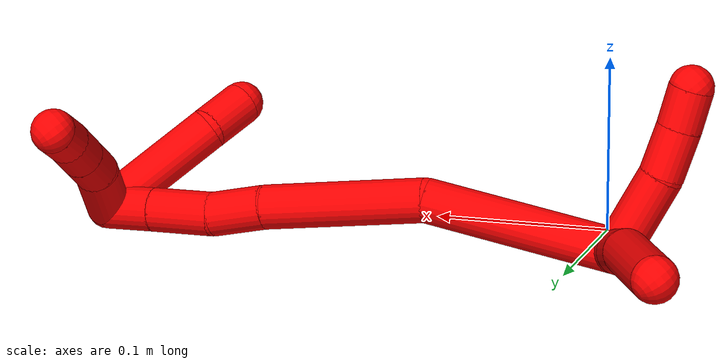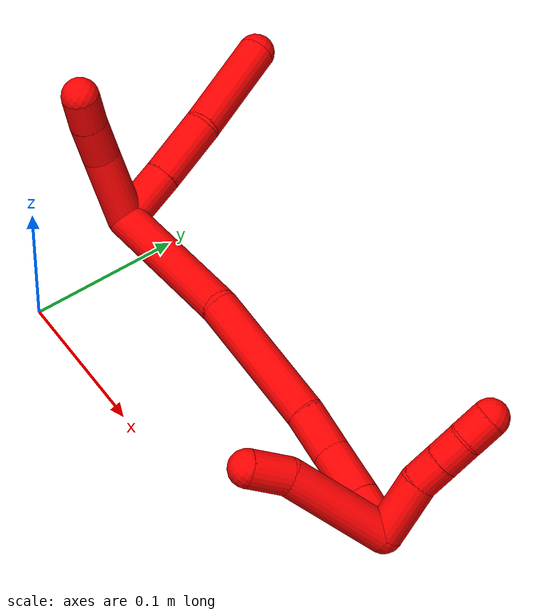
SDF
<sdf version="1.7">
 <world name="default">
  <model name="2">
   <static>0</static>
   <link name="2">
    <collision name="collision-cylinder-e_1_2_8">
     <pose>-0.017384 -0.005471 0.004367 0.897174 -1.188 -0.628578</pose>
     <geometry><cylinder><radius>0.0125</radius><length>0.037481</length></cylinder></geometry>
     <surface>
      <friction><ode><mu>1.16</mu><mu2>1.16</mu2><slip1>0</slip1><slip2>0</slip2></ode></friction>
      <contact><ode><kp>1e+06</kp><kd>1</kd><max_vel>0</max_vel><min_depth>0.001</min_depth></ode></contact>
     </surface>
    </collision>
    <visual name="visual-cylinder-e_1_2_8">
     <pose>-0.017384 -0.005471 0.004367 0.897174 -1.188 -0.628578</pose>
     <geometry><cylinder><radius>0.0125</radius><length>0.037481</length></cylinder></geometry>
     <material><ambient>1 0 0 1</ambient></material>
    </visual>
    <collision name="collision-cylinder-e_2_8_9">
     <pose>-0.05523 -0.017222 0.013259 0.946388 -1.20913 -0.679958</pose>
     <geometry><cylinder><radius>0.0125</radius><length>0.043753</length></cylinder></geometry>
     <surface>
      <friction><ode><mu>1.16</mu><mu2>1.16</mu2><slip1>0</slip1><slip2>0</slip2></ode></friction>
      <contact><ode><kp>1e+06</kp><kd>1</kd><max_vel>0</max_vel><min_depth>0.001</min_depth></ode></contact>
     </surface>
    </collision>
    <visual name="visual-cylinder-e_2_8_9">
     <pose>-0.05523 -0.017222 0.013259 0.946388 -1.20913 -0.679958</pose>
     <geometry><cylinder><radius>0.0125</radius><length>0.043753</length></cylinder></geometry>
     <material><ambient>1 0 0 1</ambient></material>
    </visual>
    <collision name="collision-cylinder-e_3_9_6">
     <pose>-0.109149 -0.025378 0.025481 0.239112 -1.33829 -0.189442</pose>
     <geometry><cylinder><radius>0.0125</radius><length>0.068766</length></cylinder></geometry>
     <surface>
      <friction><ode><mu>1.16</mu><mu2>1.16</mu2><slip1>0</slip1><slip2>0</slip2></ode></friction>
      <contact><ode><kp>1e+06</kp><kd>1</kd><max_vel>0</max_vel><min_depth>0.001</min_depth></ode></contact>
     </surface>
    </collision>
    <visual name="visual-cylinder-e_3_9_6">
     <pose>-0.109149 -0.025378 0.025481 0.239112 -1.33829 -0.189442</pose>
     <geometry><cylinder><radius>0.0125</radius><length>0.068766</length></cylinder></geometry>
     <material><ambient>1 0 0 1</ambient></material>
    </visual>
    <collision name="collision-cylinder-e_1_2_10">
     <pose>-0.009085 -0.012 -0.019514 2.59027 -0.377548 -1.18806</pose>
     <geometry><cylinder><radius>0.0125</radius><length>0.049288</length></cylinder></geometry>
     <surface>
      <friction><ode><mu>1.16</mu><mu2>1.16</mu2><slip1>0</slip1><slip2>0</slip2></ode></friction>
      <contact><ode><kp>1e+06</kp><kd>1</kd><max_vel>0</max_vel><min_depth>0.001</min_depth></ode></contact>
     </surface>
    </collision>
    <visual name="visual-cylinder-e_1_2_10">
     <pose>-0.009085 -0.012 -0.019514 2.59027 -0.377548 -1.18806</pose>
     <geometry><cylinder><radius>0.0125</radius><length>0.049288</length></cylinder></geometry>
     <material><ambient>1 0 0 1</ambient></material>
    </visual>
    <collision name="collision-cylinder-e_2_10_11">
     <pose>-0.021403 -0.032529 -0.049478 2.45707 -0.235298 -0.640637</pose>
     <geometry><cylinder><radius>0.0125</radius><length>0.027742</length></cylinder></geometry>
     <surface>
      <friction><ode><mu>1.16</mu><mu2>1.16</mu2><slip1>0</slip1><slip2>0</slip2></ode></friction>
      <contact><ode><kp>1e+06</kp><kd>1</kd><max_vel>0</max_vel><min_depth>0.001</min_depth></ode></contact>
     </surface>
    </collision>
    <visual name="visual-cylinder-e_2_10_11">
     <pose>-0.021403 -0.032529 -0.049478 2.45707 -0.235298 -0.640637</pose>
     <geometry><cylinder><radius>0.0125</radius><length>0.027742</length></cylinder></geometry>
     <material><ambient>1 0 0 1</ambient></material>
    </visual>
    <collision name="collision-cylinder-e_3_11_5">
     <pose>-0.027494 -0.048702 -0.068009 2.38392 -0.2514 -0.61478</pose>
     <geometry><cylinder><radius>0.0125</radius><length>0.02297</length></cylinder></geometry>
     <surface>
      <friction><ode><mu>1.16</mu><mu2>1.16</mu2><slip1>0</slip1><slip2>0</slip2></ode></friction>
      <contact><ode><kp>1e+06</kp><kd>1</kd><max_vel>0</max_vel><min_depth>0.001</min_depth></ode></contact>
     </surface>
    </collision>
    <visual name="visual-cylinder-e_3_11_5">
     <pose>-0.027494 -0.048702 -0.068009 2.38392 -0.2514 -0.61478</pose>
     <geometry><cylinder><radius>0.0125</radius><length>0.02297</length></cylinder></geometry>
     <material><ambient>1 0 0 1</ambient></material>
    </visual>
    <collision name="collision-cylinder-e_1_2_12">
     <pose>0.030026 -0.035435 0.028433 0.894595 0.584001 0.28643</pose>
     <geometry><cylinder><radius>0.0125</radius><length>0.108914</length></cylinder></geometry>
     <surface>
      <friction><ode><mu>1.16</mu><mu2>1.16</mu2><slip1>0</slip1><slip2>0</slip2></ode></friction>
      <contact><ode><kp>1e+06</kp><kd>1</kd><max_vel>0</max_vel><min_depth>0.001</min_depth></ode></contact>
     </surface>
    </collision>
    <visual name="visual-cylinder-e_1_2_12">
     <pose>0.030026 -0.035435 0.028433 0.894595 0.584001 0.28643</pose>
     <geometry><cylinder><radius>0.0125</radius><length>0.108914</length></cylinder></geometry>
     <material><ambient>1 0 0 1</ambient></material>
    </visual>
    <collision name="collision-cylinder-e_2_12_13">
     <pose>0.087901 -0.089684 0.089253 0.526272 0.639336 0.177872</pose>
     <geometry><cylinder><radius>0.0125</radius><length>0.093349</length></cylinder></geometry>
     <surface>
      <friction><ode><mu>1.16</mu><mu2>1.16</mu2><slip1>0</slip1><slip2>0</slip2></ode></friction>
      <contact><ode><kp>1e+06</kp><kd>1</kd><max_vel>0</max_vel><min_depth>0.001</min_depth></ode></contact>
     </surface>
    </collision>
    <visual name="visual-cylinder-e_2_12_13">
     <pose>0.087901 -0.089684 0.089253 0.526272 0.639336 0.177872</pose>
     <geometry><cylinder><radius>0.0125</radius><length>0.093349</length></cylinder></geometry>
     <material><ambient>1 0 0 1</ambient></material>
    </visual>
    <collision name="collision-cylinder-e_3_13_14">
     <pose>0.126005 -0.113207 0.132789 0.399619 0.703021 0.148266</pose>
     <geometry><cylinder><radius>0.0125</radius><length>0.031726</length></cylinder></geometry>
     <surface>
      <friction><ode><mu>1.16</mu><mu2>1.16</mu2><slip1>0</slip1><slip2>0</slip2></ode></friction>
      <contact><ode><kp>1e+06</kp><kd>1</kd><max_vel>0</max_vel><min_depth>0.001</min_depth></ode></contact>
     </surface>
    </collision>
    <visual name="visual-cylinder-e_3_13_14">
     <pose>0.126005 -0.113207 0.132789 0.399619 0.703021 0.148266</pose>
     <geometry><cylinder><radius>0.0125</radius><length>0.031726</length></cylinder></geometry>
     <material><ambient>1 0 0 1</ambient></material>
    </visual>
    <collision name="collision-cylinder-e_4_14_15">
     <pose>0.148629 -0.126115 0.154595 0.655797 0.743629 0.263767</pose>
     <geometry><cylinder><radius>0.0125</radius><length>0.036541</length></cylinder></geometry>
     <surface>
      <friction><ode><mu>1.16</mu><mu2>1.16</mu2><slip1>0</slip1><slip2>0</slip2></ode></friction>
      <contact><ode><kp>1e+06</kp><kd>1</kd><max_vel>0</max_vel><min_depth>0.001</min_depth></ode></contact>
     </surface>
    </collision>
    <visual name="visual-cylinder-e_4_14_15">
     <pose>0.148629 -0.126115 0.154595 0.655797 0.743629 0.263767</pose>
     <geometry><cylinder><radius>0.0125</radius><length>0.036541</length></cylinder></geometry>
     <material><ambient>1 0 0 1</ambient></material>
    </visual>
    <collision name="collision-cylinder-e_5_15_1">
     <pose>0.171228 -0.140652 0.173756 0.640418 0.767415 0.26618</pose>
     <geometry><cylinder><radius>0.0125</radius><length>0.02947</length></cylinder></geometry>
     <surface>
      <friction><ode><mu>1.16</mu><mu2>1.16</mu2><slip1>0</slip1><slip2>0</slip2></ode></friction>
      <contact><ode><kp>1e+06</kp><kd>1</kd><max_vel>0</max_vel><min_depth>0.001</min_depth></ode></contact>
     </surface>
    </collision>
    <visual name="visual-cylinder-e_5_15_1">
     <pose>0.171228 -0.140652 0.173756 0.640418 0.767415 0.26618</pose>
     <geometry><cylinder><radius>0.0125</radius><length>0.02947</length></cylinder></geometry>
     <material><ambient>1 0 0 1</ambient></material>
    </visual>
    <collision name="collision-cylinder-e_1_1_16">
     <pose>0.180293 -0.147729 0.146057 3.12116 -0.032171 -2.00993</pose>
     <geometry><cylinder><radius>0.0125</radius><length>0.072458</length></cylinder></geometry>
     <surface>
      <friction><ode><mu>1.16</mu><mu2>1.16</mu2><slip1>0</slip1><slip2>0</slip2></ode></friction>
      <contact><ode><kp>1e+06</kp><kd>1</kd><max_vel>0</max_vel><min_depth>0.001</min_depth></ode></contact>
     </surface>
    </collision>
    <visual name="visual-cylinder-e_1_1_16">
     <pose>0.180293 -0.147729 0.146057 3.12116 -0.032171 -2.00993</pose>
     <geometry><cylinder><radius>0.0125</radius><length>0.072458</length></cylinder></geometry>
     <material><ambient>1 0 0 1</ambient></material>
    </visual>
    <collision name="collision-cylinder-e_2_16_4">
     <pose>0.183092 -0.147542 0.096699 -3.07124 0.292039 -2.67182</pose>
     <geometry><cylinder><radius>0.0125</radius><length>0.027542</length></cylinder></geometry>
     <surface>
      <friction><ode><mu>1.16</mu><mu2>1.16</mu2><slip1>0</slip1><slip2>0</slip2></ode></friction>
      <contact><ode><kp>1e+06</kp><kd>1</kd><max_vel>0</max_vel><min_depth>0.001</min_depth></ode></contact>
     </surface>
    </collision>
    <visual name="visual-cylinder-e_2_16_4">
     <pose>0.183092 -0.147542 0.096699 -3.07124 0.292039 -2.67182</pose>
     <geometry><cylinder><radius>0.0125</radius><length>0.027542</length></cylinder></geometry>
     <material><ambient>1 0 0 1</ambient></material>
    </visual>
    <collision name="collision-cylinder-e_1_1_17">
     <pose>0.166959 -0.160681 0.181867 1.59946 -0.81382 -0.834864</pose>
     <geometry><cylinder><radius>0.0125</radius><length>0.039893</length></cylinder></geometry>
     <surface>
      <friction><ode><mu>1.16</mu><mu2>1.16</mu2><slip1>0</slip1><slip2>0</slip2></ode></friction>
      <contact><ode><kp>1e+06</kp><kd>1</kd><max_vel>0</max_vel><min_depth>0.001</min_depth></ode></contact>
     </surface>
    </collision>
    <visual name="visual-cylinder-e_1_1_17">
     <pose>0.166959 -0.160681 0.181867 1.59946 -0.81382 -0.834864</pose>
     <geometry><cylinder><radius>0.0125</radius><length>0.039893</length></cylinder></geometry>
     <material><ambient>1 0 0 1</ambient></material>
    </visual>
    <collision name="collision-cylinder-e_2_17_18">
     <pose>0.145974 -0.181733 0.183472 1.30581 -0.704763 -0.548312</pose>
     <geometry><cylinder><radius>0.0125</radius><length>0.020023</length></cylinder></geometry>
     <surface>
      <friction><ode><mu>1.16</mu><mu2>1.16</mu2><slip1>0</slip1><slip2>0</slip2></ode></friction>
      <contact><ode><kp>1e+06</kp><kd>1</kd><max_vel>0</max_vel><min_depth>0.001</min_depth></ode></contact>
     </surface>
    </collision>
    <visual name="visual-cylinder-e_2_17_18">
     <pose>0.145974 -0.181733 0.183472 1.30581 -0.704763 -0.548312</pose>
     <geometry><cylinder><radius>0.0125</radius><length>0.020023</length></cylinder></geometry>
     <material><ambient>1 0 0 1</ambient></material>
    </visual>
    <collision name="collision-cylinder-e_3_18_19">
     <pose>0.132931 -0.196405 0.18745 1.30617 -0.713513 -0.555558</pose>
     <geometry><cylinder><radius>0.0125</radius><length>0.020037</length></cylinder></geometry>
     <surface>
      <friction><ode><mu>1.16</mu><mu2>1.16</mu2><slip1>0</slip1><slip2>0</slip2></ode></friction>
      <contact><ode><kp>1e+06</kp><kd>1</kd><max_vel>0</max_vel><min_depth>0.001</min_depth></ode></contact>
     </surface>
    </collision>
    <visual name="visual-cylinder-e_3_18_19">
     <pose>0.132931 -0.196405 0.18745 1.30617 -0.713513 -0.555558</pose>
     <geometry><cylinder><radius>0.0125</radius><length>0.020037</length></cylinder></geometry>
     <material><ambient>1 0 0 1</ambient></material>
    </visual>
    <collision name="collision-cylinder-e_4_19_3">
     <pose>0.118975 -0.209933 0.192092 1.16652 -0.830273 -0.566038</pose>
     <geometry><cylinder><radius>0.0125</radius><length>0.020047</length></cylinder></geometry>
     <surface>
      <friction><ode><mu>1.16</mu><mu2>1.16</mu2><slip1>0</slip1><slip2>0</slip2></ode></friction>
      <contact><ode><kp>1e+06</kp><kd>1</kd><max_vel>0</max_vel><min_depth>0.001</min_depth></ode></contact>
     </surface>
    </collision>
    <visual name="visual-cylinder-e_4_19_3">
     <pose>0.118975 -0.209933 0.192092 1.16652 -0.830273 -0.566038</pose>
     <geometry><cylinder><radius>0.0125</radius><length>0.020047</length></cylinder></geometry>
     <material><ambient>1 0 0 1</ambient></material>
    </visual>
    <collision name="collision-sphere-3">
     <pose>0.111576 -0.216151 0.194752 0 -0 0</pose>
     <geometry><sphere><radius>0.0125</radius></sphere></geometry>
     <surface>
      <friction><ode><mu>1.16</mu><mu2>1.16</mu2><slip1>0</slip1><slip2>0</slip2></ode></friction>
      <contact><ode><kp>1e+06</kp><kd>1</kd><max_vel>0</max_vel><min_depth>0.001</min_depth></ode></contact>
     </surface>
    </collision>
    <visual name="visual-sphere-3">
     <pose>0.111576 -0.216151 0.194752 0 -0 0</pose>
     <geometry><sphere><radius>0.0125</radius></sphere></geometry>
     <material><ambient>1 0 0 1</ambient></material>
    </visual>
    <collision name="collision-sphere-19">
     <pose>0.126374 -0.203715 0.189431 0 -0 0</pose>
     <geometry><sphere><radius>0.0125</radius></sphere></geometry>
     <surface>
      <friction><ode><mu>1.16</mu><mu2>1.16</mu2><slip1>0</slip1><slip2>0</slip2></ode></friction>
      <contact><ode><kp>1e+06</kp><kd>1</kd><max_vel>0</max_vel><min_depth>0.001</min_depth></ode></contact>
     </surface>
    </collision>
    <visual name="visual-sphere-19">
     <pose>0.126374 -0.203715 0.189431 0 -0 0</pose>
     <geometry><sphere><radius>0.0125</radius></sphere></geometry>
     <material><ambient>1 0 0 1</ambient></material>
    </visual>
    <collision name="collision-sphere-11">
     <pose>-0.024637 -0.041058 -0.059928 0 -0 0</pose>
     <geometry><sphere><radius>0.0125</radius></sphere></geometry>
     <surface>
      <friction><ode><mu>1.16</mu><mu2>1.16</mu2><slip1>0</slip1><slip2>0</slip2></ode></friction>
      <contact><ode><kp>1e+06</kp><kd>1</kd><max_vel>0</max_vel><min_depth>0.001</min_depth></ode></contact>
     </surface>
    </collision>
    <visual name="visual-sphere-11">
     <pose>-0.024637 -0.041058 -0.059928 0 -0 0</pose>
     <geometry><sphere><radius>0.0125</radius></sphere></geometry>
     <material><ambient>1 0 0 1</ambient></material>
    </visual>
    <collision name="collision-sphere-10">
     <pose>-0.01817 -0.024 -0.039028 0 -0 0</pose>
     <geometry><sphere><radius>0.0125</radius></sphere></geometry>
     <surface>
      <friction><ode><mu>1.16</mu><mu2>1.16</mu2><slip1>0</slip1><slip2>0</slip2></ode></friction>
      <contact><ode><kp>1e+06</kp><kd>1</kd><max_vel>0</max_vel><min_depth>0.001</min_depth></ode></contact>
     </surface>
    </collision>
    <visual name="visual-sphere-10">
     <pose>-0.01817 -0.024 -0.039028 0 -0 0</pose>
     <geometry><sphere><radius>0.0125</radius></sphere></geometry>
     <material><ambient>1 0 0 1</ambient></material>
    </visual>
    <collision name="collision-sphere-6">
     <pose>-0.142606 -0.027255 0.033178 0 -0 0</pose>
     <geometry><sphere><radius>0.0125</radius></sphere></geometry>
     <surface>
      <friction><ode><mu>1.16</mu><mu2>1.16</mu2><slip1>0</slip1><slip2>0</slip2></ode></friction>
      <contact><ode><kp>1e+06</kp><kd>1</kd><max_vel>0</max_vel><min_depth>0.001</min_depth></ode></contact>
     </surface>
    </collision>
    <visual name="visual-sphere-6">
     <pose>-0.142606 -0.027255 0.033178 0 -0 0</pose>
     <geometry><sphere><radius>0.0125</radius></sphere></geometry>
     <material><ambient>1 0 0 1</ambient></material>
    </visual>
    <collision name="collision-sphere-9">
     <pose>-0.075691 -0.023502 0.017784 0 -0 0</pose>
     <geometry><sphere><radius>0.0125</radius></sphere></geometry>
     <surface>
      <friction><ode><mu>1.16</mu><mu2>1.16</mu2><slip1>0</slip1><slip2>0</slip2></ode></friction>
      <contact><ode><kp>1e+06</kp><kd>1</kd><max_vel>0</max_vel><min_depth>0.001</min_depth></ode></contact>
     </surface>
    </collision>
    <visual name="visual-sphere-9">
     <pose>-0.075691 -0.023502 0.017784 0 -0 0</pose>
     <geometry><sphere><radius>0.0125</radius></sphere></geometry>
     <material><ambient>1 0 0 1</ambient></material>
    </visual>
    <collision name="collision-sphere-2">
     <geometry><sphere><radius>0.0125</radius></sphere></geometry>
     <surface>
      <friction><ode><mu>1.16</mu><mu2>1.16</mu2><slip1>0</slip1><slip2>0</slip2></ode></friction>
      <contact><ode><kp>1e+06</kp><kd>1</kd><max_vel>0</max_vel><min_depth>0.001</min_depth></ode></contact>
     </surface>
    </collision>
    <visual name="visual-sphere-2">
     <geometry><sphere><radius>0.0125</radius></sphere></geometry>
     <material><ambient>1 0 0 1</ambient></material>
    </visual>
    <collision name="collision-sphere-8">
     <pose>-0.034769 -0.010942 0.008733 0 -0 0</pose>
     <geometry><sphere><radius>0.0125</radius></sphere></geometry>
     <surface>
      <friction><ode><mu>1.16</mu><mu2>1.16</mu2><slip1>0</slip1><slip2>0</slip2></ode></friction>
      <contact><ode><kp>1e+06</kp><kd>1</kd><max_vel>0</max_vel><min_depth>0.001</min_depth></ode></contact>
     </surface>
    </collision>
    <visual name="visual-sphere-8">
     <pose>-0.034769 -0.010942 0.008733 0 -0 0</pose>
     <geometry><sphere><radius>0.0125</radius></sphere></geometry>
     <material><ambient>1 0 0 1</ambient></material>
    </visual>
    <collision name="collision-sphere-5">
     <pose>-0.030351 -0.056347 -0.07609 0 -0 0</pose>
     <geometry><sphere><radius>0.0125</radius></sphere></geometry>
     <surface>
      <friction><ode><mu>1.16</mu><mu2>1.16</mu2><slip1>0</slip1><slip2>0</slip2></ode></friction>
      <contact><ode><kp>1e+06</kp><kd>1</kd><max_vel>0</max_vel><min_depth>0.001</min_depth></ode></contact>
     </surface>
    </collision>
    <visual name="visual-sphere-5">
     <pose>-0.030351 -0.056347 -0.07609 0 -0 0</pose>
     <geometry><sphere><radius>0.0125</radius></sphere></geometry>
     <material><ambient>1 0 0 1</ambient></material>
    </visual>
    <collision name="collision-sphere-12">
     <pose>0.060052 -0.070869 0.056865 0 -0 0</pose>
     <geometry><sphere><radius>0.0125</radius></sphere></geometry>
     <surface>
      <friction><ode><mu>1.16</mu><mu2>1.16</mu2><slip1>0</slip1><slip2>0</slip2></ode></friction>
      <contact><ode><kp>1e+06</kp><kd>1</kd><max_vel>0</max_vel><min_depth>0.001</min_depth></ode></contact>
     </surface>
    </collision>
    <visual name="visual-sphere-12">
     <pose>0.060052 -0.070869 0.056865 0 -0 0</pose>
     <geometry><sphere><radius>0.0125</radius></sphere></geometry>
     <material><ambient>1 0 0 1</ambient></material>
    </visual>
    <collision name="collision-sphere-13">
     <pose>0.11575 -0.108499 0.121641 0 -0 0</pose>
     <geometry><sphere><radius>0.0125</radius></sphere></geometry>
     <surface>
      <friction><ode><mu>1.16</mu><mu2>1.16</mu2><slip1>0</slip1><slip2>0</slip2></ode></friction>
      <contact><ode><kp>1e+06</kp><kd>1</kd><max_vel>0</max_vel><min_depth>0.001</min_depth></ode></contact>
     </surface>
    </collision>
    <visual name="visual-sphere-13">
     <pose>0.11575 -0.108499 0.121641 0 -0 0</pose>
     <geometry><sphere><radius>0.0125</radius></sphere></geometry>
     <material><ambient>1 0 0 1</ambient></material>
    </visual>
    <collision name="collision-sphere-14">
     <pose>0.136261 -0.117915 0.143937 0 -0 0</pose>
     <geometry><sphere><radius>0.0125</radius></sphere></geometry>
     <surface>
      <friction><ode><mu>1.16</mu><mu2>1.16</mu2><slip1>0</slip1><slip2>0</slip2></ode></friction>
      <contact><ode><kp>1e+06</kp><kd>1</kd><max_vel>0</max_vel><min_depth>0.001</min_depth></ode></contact>
     </surface>
    </collision>
    <visual name="visual-sphere-14">
     <pose>0.136261 -0.117915 0.143937 0 -0 0</pose>
     <geometry><sphere><radius>0.0125</radius></sphere></geometry>
     <material><ambient>1 0 0 1</ambient></material>
    </visual>
    <collision name="collision-sphere-15">
     <pose>0.160998 -0.134315 0.165252 0 -0 0</pose>
     <geometry><sphere><radius>0.0125</radius></sphere></geometry>
     <surface>
      <friction><ode><mu>1.16</mu><mu2>1.16</mu2><slip1>0</slip1><slip2>0</slip2></ode></friction>
      <contact><ode><kp>1e+06</kp><kd>1</kd><max_vel>0</max_vel><min_depth>0.001</min_depth></ode></contact>
     </surface>
    </collision>
    <visual name="visual-sphere-15">
     <pose>0.160998 -0.134315 0.165252 0 -0 0</pose>
     <geometry><sphere><radius>0.0125</radius></sphere></geometry>
     <material><ambient>1 0 0 1</ambient></material>
    </visual>
    <collision name="collision-sphere-1">
     <pose>0.181458 -0.146989 0.18226 0 -0 0</pose>
     <geometry><sphere><radius>0.0125</radius></sphere></geometry>
     <surface>
      <friction><ode><mu>1.16</mu><mu2>1.16</mu2><slip1>0</slip1><slip2>0</slip2></ode></friction>
      <contact><ode><kp>1e+06</kp><kd>1</kd><max_vel>0</max_vel><min_depth>0.001</min_depth></ode></contact>
     </surface>
    </collision>
    <visual name="visual-sphere-1">
     <pose>0.181458 -0.146989 0.18226 0 -0 0</pose>
     <geometry><sphere><radius>0.0125</radius></sphere></geometry>
     <material><ambient>1 0 0 1</ambient></material>
    </visual>
    <collision name="collision-sphere-18">
     <pose>0.139487 -0.189094 0.185469 0 -0 0</pose>
     <geometry><sphere><radius>0.0125</radius></sphere></geometry>
     <surface>
      <friction><ode><mu>1.16</mu><mu2>1.16</mu2><slip1>0</slip1><slip2>0</slip2></ode></friction>
      <contact><ode><kp>1e+06</kp><kd>1</kd><max_vel>0</max_vel><min_depth>0.001</min_depth></ode></contact>
     </surface>
    </collision>
    <visual name="visual-sphere-18">
     <pose>0.139487 -0.189094 0.185469 0 -0 0</pose>
     <geometry><sphere><radius>0.0125</radius></sphere></geometry>
     <material><ambient>1 0 0 1</ambient></material>
    </visual>
    <collision name="collision-sphere-16">
     <pose>0.179128 -0.148469 0.109854 0 -0 0</pose>
     <geometry><sphere><radius>0.0125</radius></sphere></geometry>
     <surface>
      <friction><ode><mu>1.16</mu><mu2>1.16</mu2><slip1>0</slip1><slip2>0</slip2></ode></friction>
      <contact><ode><kp>1e+06</kp><kd>1</kd><max_vel>0</max_vel><min_depth>0.001</min_depth></ode></contact>
     </surface>
    </collision>
    <visual name="visual-sphere-16">
     <pose>0.179128 -0.148469 0.109854 0 -0 0</pose>
     <geometry><sphere><radius>0.0125</radius></sphere></geometry>
     <material><ambient>1 0 0 1</ambient></material>
    </visual>
    <collision name="collision-sphere-4">
     <pose>0.187057 -0.146614 0.083544 0 -0 0</pose>
     <geometry><sphere><radius>0.0125</radius></sphere></geometry>
     <surface>
      <friction><ode><mu>1.16</mu><mu2>1.16</mu2><slip1>0</slip1><slip2>0</slip2></ode></friction>
      <contact><ode><kp>1e+06</kp><kd>1</kd><max_vel>0</max_vel><min_depth>0.001</min_depth></ode></contact>
     </surface>
    </collision>
    <visual name="visual-sphere-4">
     <pose>0.187057 -0.146614 0.083544 0 -0 0</pose>
     <geometry><sphere><radius>0.0125</radius></sphere></geometry>
     <material><ambient>1 0 0 1</ambient></material>
    </visual>
    <collision name="collision-sphere-17">
     <pose>0.15246 -0.174373 0.181474 0 -0 0</pose>
     <geometry><sphere><radius>0.0125</radius></sphere></geometry>
     <surface>
      <friction><ode><mu>1.16</mu><mu2>1.16</mu2><slip1>0</slip1><slip2>0</slip2></ode></friction>
      <contact><ode><kp>1e+06</kp><kd>1</kd><max_vel>0</max_vel><min_depth>0.001</min_depth></ode></contact>
     </surface>
    </collision>
    <visual name="visual-sphere-17">
     <pose>0.15246 -0.174373 0.181474 0 -0 0</pose>
     <geometry><sphere><radius>0.0125</radius></sphere></geometry>
     <material><ambient>1 0 0 1</ambient></material>
    </visual>
    <inertial>
     <pose>0.061923 -0.083804 0.075723 0 -0 0</pose>
     <mass>0.75</mass>
     <inertia>
      <ixx>0.000142</ixx>
      <ixy>0</ixy>
      <ixz>0</ixz>
      <iyy>0.000179</iyy>
      <iyz>0</iyz>
      <izz>7.7e-05</izz>
     </inertia>
    </inertial>
   </link>
   <pose>-0.02498 0.083008 0.011422 -2.13187 0.145647 -0.91199</pose>
  </model>
 </world>
</sdf>
